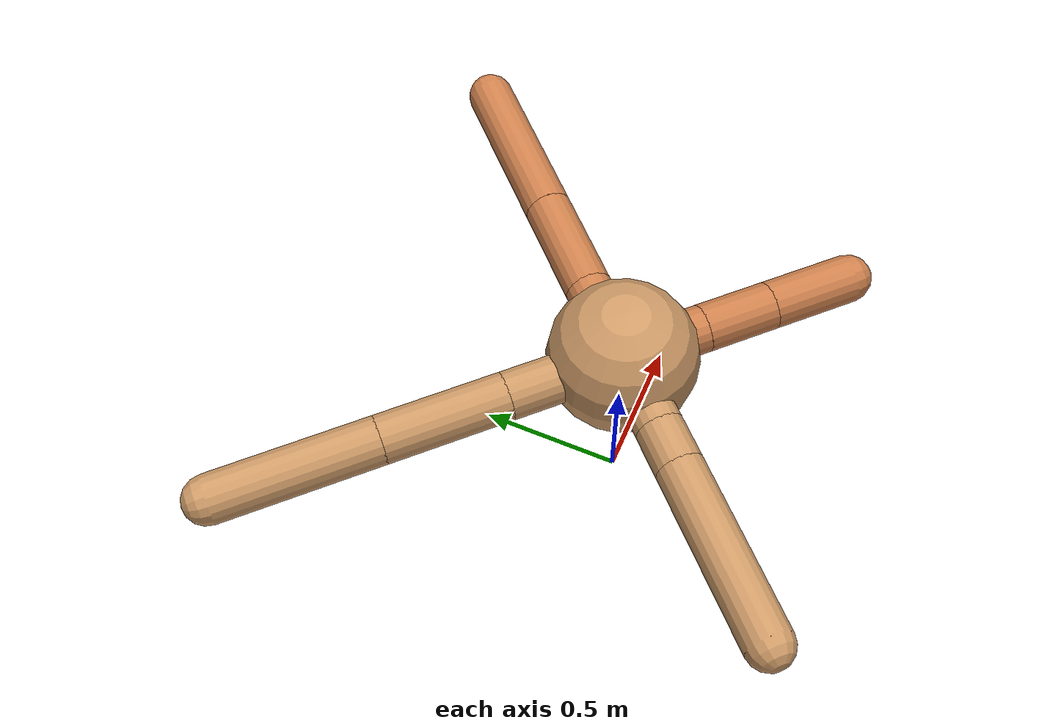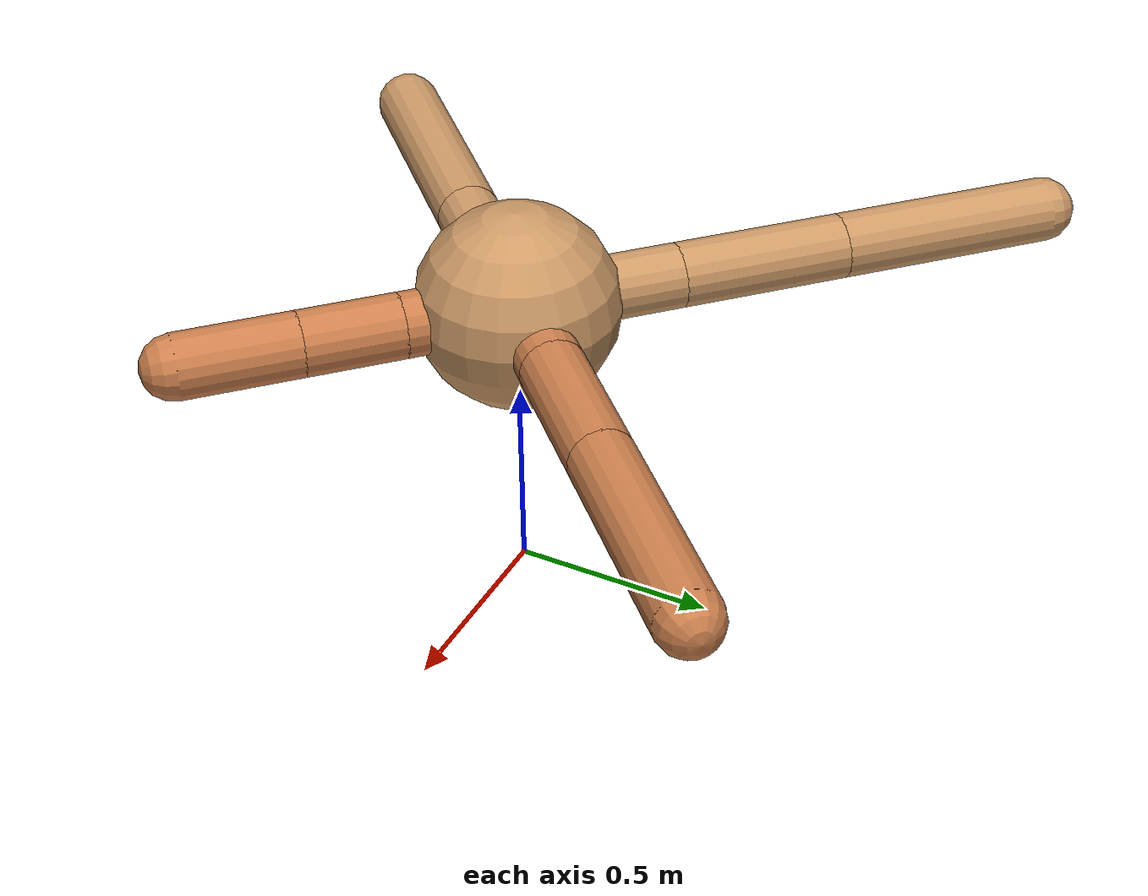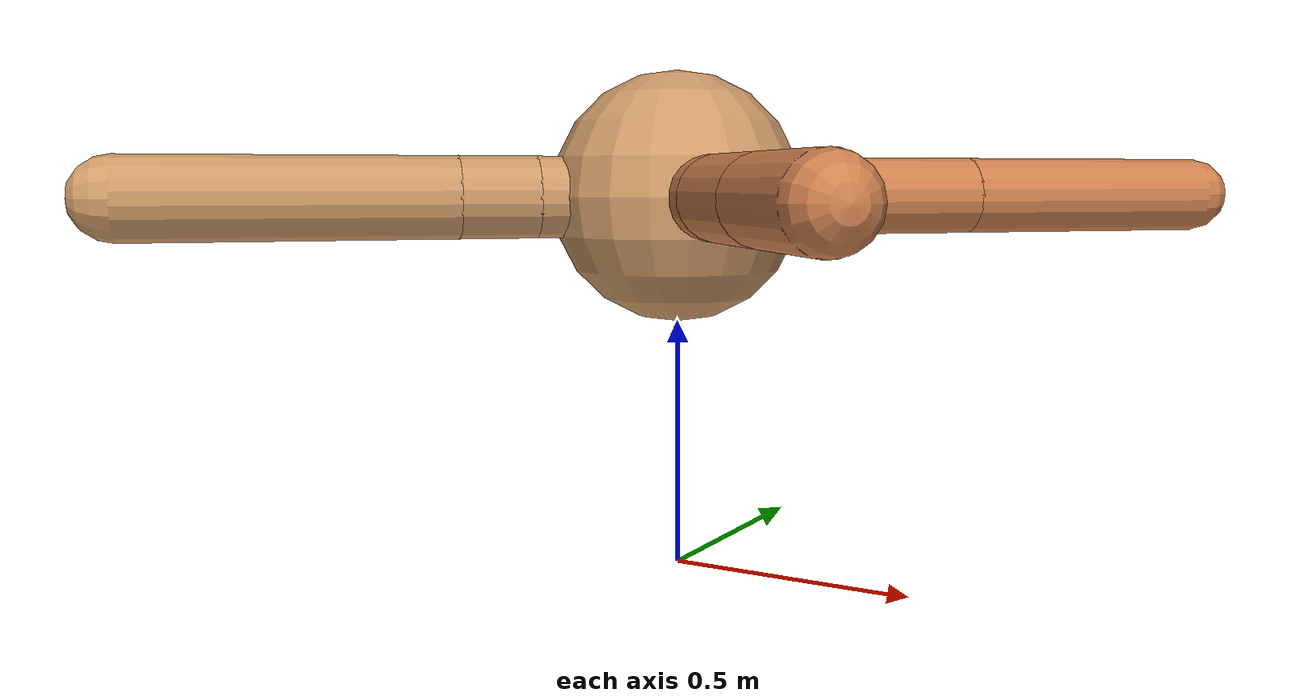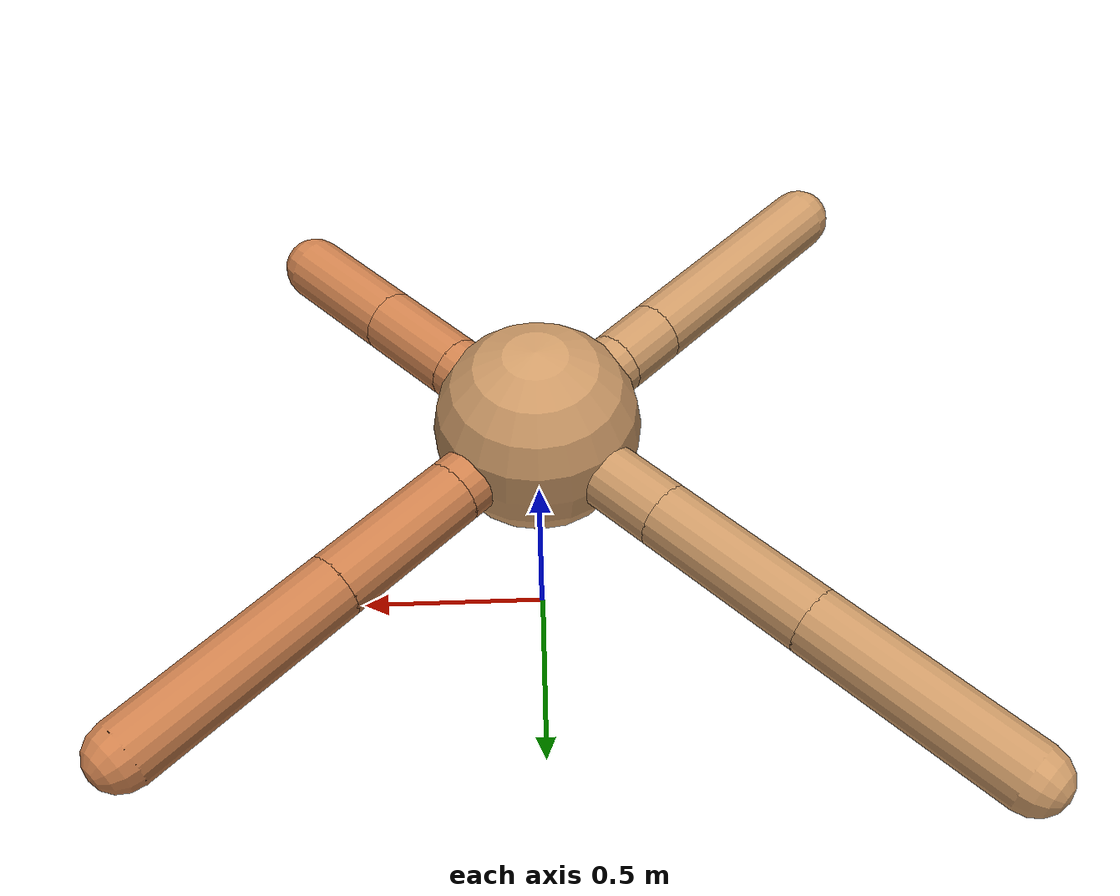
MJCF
<mujoco model="ant">
  <compiler angle="degree" coordinate="local" inertiafromgeom="true" />
  <option integrator="RK4" timestep="0.01" />
  <custom>
    <numeric data="0.0 0.0 0.55 1.0 0.0 0.0 0.0 0.0 1.0 0.0 -1.0 0.0 -1.0 0.0 1.0" name="init_qpos" />
  </custom>
  <default>
    <joint armature="1" damping="1" limited="true" />
    <geom conaffinity="0" condim="3" density="5.0" friction="1.5 0.1 0.1" margin="0.01" rgba="0.8 0.6 0.4 1" />
  </default>
  <worldbody>
    <body name="torso" pos="0 0 0.75">
      <geom name="torso_geom" pos="0 0 0" size="0.25" type="sphere" />

      <body name="front_left_leg" pos="0 0 0">
        <geom fromto="0.0 0.0 0.0 0.2 0.2 0.0" name="aux_1_geom" size="0.08" type="capsule" rgba=".8 .5 .3 1" />
        <body name="aux_1" pos="0.2 0.2 0.0">
          <joint axis="0 0 1" name="hip_1" pos="0.0 0.0 0.0" range="-40 40" type="hinge" />
          <geom fromto="0.0 0.0 0.0 0.2540380171204017 0.2540380171204017 0.0" name="left_leg_geom" size="0.08" type="capsule" rgba=".8 .5 .3 1" />
          <body pos="0.2540380171204017 0.2540380171204017 0.0" name="front_left_foot">
            <joint axis="-1 1 0" name="ankle_1" pos="0.0 0.0 0.0" range="30 100" type="hinge" />
            <geom fromto="0.0 0.0 0.0 0.3963002637759873 0.3963002637759873 0.0" name="left_ankle_geom" size="0.08" type="capsule" rgba=".8 .5 .3 1" />
          </body>
        </body>
      </body>
      <body name="front_right_leg" pos="0 0 0">
        <geom fromto="0.0 0.0 0.0 -0.28380189080362933 0.28380189080362933 0.0" name="aux_2_geom" size="0.08" type="capsule" />
        <body name="aux_2" pos="-0.28380189080362933 0.28380189080362933 0.0">
          <joint axis="0 0 1" name="hip_2" pos="0.0 0.0 0.0" range="-40 40" type="hinge" />
          <geom fromto="0.0 0.0 0.0 -0.29659835814591934 0.29659835814591934 0.0" name="right_leg_geom" size="0.08" type="capsule" />
          <body pos="-0.29659835814591934 0.29659835814591934 0.0" name="front_right_foot">
            <joint axis="1 1 0" name="ankle_2" pos="0.0 0.0 0.0" range="-100 -30" type="hinge" />
            <geom fromto="0.0 0.0 0.0 -0.3852896731149158 0.3852896731149158 0.0" name="right_ankle_geom" size="0.08" type="capsule" />
          </body>
        </body>
      </body>
      <body name="left_back_leg" pos="0 0 0">
        <geom fromto="0.0 0.0 0.0 -0.2 -0.2 0.0" name="aux_3_geom" size="0.08" type="capsule" />
        <body name="aux_3" pos="-0.2 -0.2 0.0">
          <joint axis="0 0 1" name="hip_3" pos="0.0 0.0 0.0" range="-40 40" type="hinge" />
          <geom fromto="0.0 0.0 0.0 -0.10477144010058692 -0.10477144010058692 0.0" name="back_leg_geom" size="0.08" type="capsule" />
          <body pos="-0.10477144010058692 -0.10477144010058692 0.0" name="left_back_foot">
            <joint axis="-1 1 0" name="ankle_3" pos="0.0 0.0 0.0" range="-100 -30" type="hinge" />
            <geom fromto="0.0 0.0 0.0 -0.4254931799430899 -0.4254931799430899 0.0" name="third_ankle_geom" size="0.08" type="capsule" />
          </body>
        </body>
      </body>
      <body name="right_back_leg" pos="0 0 0">
        <geom fromto="0.0 0.0 0.0 0.2 -0.2 0.0" name="aux_4_geom" size="0.08" type="capsule" rgba=".8 .5 .3 1" />
        <body name="aux_4" pos="0.2 -0.2 0.0">
          <joint axis="0 0 1" name="hip_4" pos="0.0 0.0 0.0" range="-40 40" type="hinge" />
          <geom fromto="0.0 0.0 0.0 0.17062224984774746 -0.17062224984774746 0.0" name="rightback_leg_geom" size="0.08" type="capsule" rgba=".8 .5 .3 1" />
          <body pos="0.17062224984774746 -0.17062224984774746 0.0" name="right_back_foot">
            <joint axis="1 1 0" name="ankle_4" pos="0.0 0.0 0.0" range="30 100" type="hinge" />
            <geom fromto="0.0 0.0 0.0 0.20690914312894737 -0.20690914312894737 0.0" name="fourth_ankle_geom" size="0.08" type="capsule" rgba=".8 .5 .3 1" />
          </body>
        </body>
      </body>
    </body>
  </worldbody>
  <actuator>
    <motor ctrllimited="true" ctrlrange="-1.0 1.0" joint="hip_4" gear="150" />
    <motor ctrllimited="true" ctrlrange="-1.0 1.0" joint="ankle_4" gear="150" />
    <motor ctrllimited="true" ctrlrange="-1.0 1.0" joint="hip_1" gear="150" />
    <motor ctrllimited="true" ctrlrange="-1.0 1.0" joint="ankle_1" gear="150" />
    <motor ctrllimited="true" ctrlrange="-1.0 1.0" joint="hip_2" gear="150" />
    <motor ctrllimited="true" ctrlrange="-1.0 1.0" joint="ankle_2" gear="150" />
    <motor ctrllimited="true" ctrlrange="-1.0 1.0" joint="hip_3" gear="150" />
    <motor ctrllimited="true" ctrlrange="-1.0 1.0" joint="ankle_3" gear="150" />
  </actuator>
</mujoco>
